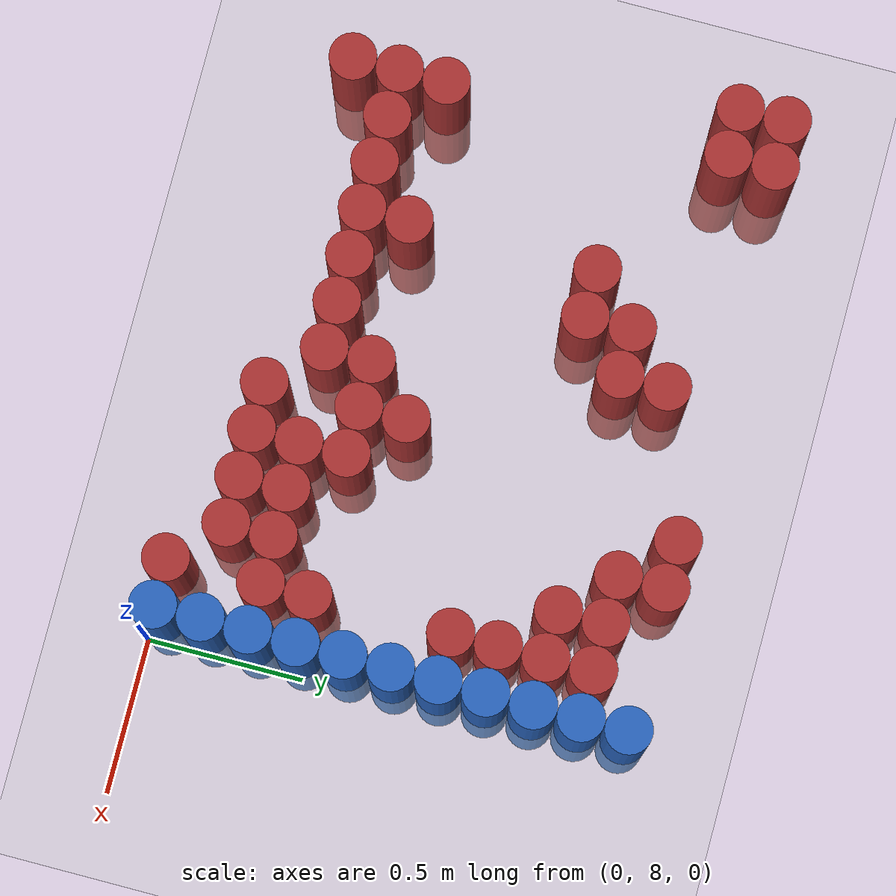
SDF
<sdf version="1.6">
 <world name="default">
  <model name="ground_plane">
   <static>1</static>
   <link name="link">
    <collision name="collision">
     <geometry><plane><normal>0 0 1</normal><size>100 100</size></plane></geometry>
     <surface><friction><ode><mu>100</mu><mu2>50</mu2></ode></friction></surface>
    </collision>
    <visual name="visual">
     <cast_shadows>0</cast_shadows>
     <geometry><plane><normal>0 0 1</normal><size>100 100</size></plane></geometry>
     <material>
      <script><uri>file://media/materials/scripts/gazebo.material</uri><name>Gazebo/Grey</name></script>
     </material>
    </visual>
   </link>
  </model>
  <model name="unit_cylinder_177">
   <static>1</static>
   <pose>-2.025000 9.375000 0.000000 0.000000 0.000000 0.000000</pose>
   <link name="link">
    <inertial>
     <mass>1</mass>
     <inertia><ixx>0.145833</ixx><ixy>0</ixy><ixz>0</ixz><iyy>0.145833</iyy><iyz>0</iyz><izz>0.125</izz></inertia>
    </inertial>
    <collision name="collision">
     <geometry><cylinder><radius>0.075000</radius><length>1</length></cylinder></geometry>
    </collision>
    <visual name="visual">
     <geometry><cylinder><radius>0.075000</radius><length>1</length></cylinder></geometry>
     <material>
      <ambient>0.648000 0.192000 0.192000 1</ambient>
      <diffuse>0.648000 0.192000 0.192000 1</diffuse>
     </material>
     <material>
      <script><name>Gazebo/Grey</name><uri>file://media/materials/scripts/gazebo.material</uri></script>
     </material>
    </visual>
   </link>
  </model>
  <model name="unit_cylinder_178">
   <static>1</static>
   <pose>-2.025000 9.525000 0.000000 0.000000 0.000000 0.000000</pose>
   <link name="link">
    <inertial>
     <mass>1</mass>
     <inertia><ixx>0.145833</ixx><ixy>0</ixy><ixz>0</ixz><iyy>0.145833</iyy><iyz>0</iyz><izz>0.125</izz></inertia>
    </inertial>
    <collision name="collision">
     <geometry><cylinder><radius>0.075000</radius><length>1</length></cylinder></geometry>
    </collision>
    <visual name="visual">
     <geometry><cylinder><radius>0.075000</radius><length>1</length></cylinder></geometry>
     <material>
      <ambient>0.648000 0.192000 0.192000 1</ambient>
      <diffuse>0.648000 0.192000 0.192000 1</diffuse>
     </material>
     <material>
      <script><name>Gazebo/Grey</name><uri>file://media/materials/scripts/gazebo.material</uri></script>
     </material>
    </visual>
   </link>
  </model>
  <model name="unit_cylinder_188">
   <static>1</static>
   <pose>-1.875000 8.175000 0.000000 0.000000 0.000000 0.000000</pose>
   <link name="link">
    <inertial>
     <mass>1</mass>
     <inertia><ixx>0.145833</ixx><ixy>0</ixy><ixz>0</ixz><iyy>0.145833</iyy><iyz>0</iyz><izz>0.125</izz></inertia>
    </inertial>
    <collision name="collision">
     <geometry><cylinder><radius>0.075000</radius><length>1</length></cylinder></geometry>
    </collision>
    <visual name="visual">
     <geometry><cylinder><radius>0.075000</radius><length>1</length></cylinder></geometry>
     <material>
      <ambient>0.648000 0.192000 0.192000 1</ambient>
      <diffuse>0.648000 0.192000 0.192000 1</diffuse>
     </material>
     <material>
      <script><name>Gazebo/Grey</name><uri>file://media/materials/scripts/gazebo.material</uri></script>
     </material>
    </visual>
   </link>
  </model>
  <model name="unit_cylinder_189">
   <static>1</static>
   <pose>-1.875000 8.325000 0.000000 0.000000 0.000000 0.000000</pose>
   <link name="link">
    <inertial>
     <mass>1</mass>
     <inertia><ixx>0.145833</ixx><ixy>0</ixy><ixz>0</ixz><iyy>0.145833</iyy><iyz>0</iyz><izz>0.125</izz></inertia>
    </inertial>
    <collision name="collision">
     <geometry><cylinder><radius>0.075000</radius><length>1</length></cylinder></geometry>
    </collision>
    <visual name="visual">
     <geometry><cylinder><radius>0.075000</radius><length>1</length></cylinder></geometry>
     <material>
      <ambient>0.648000 0.192000 0.192000 1</ambient>
      <diffuse>0.648000 0.192000 0.192000 1</diffuse>
     </material>
     <material>
      <script><name>Gazebo/Grey</name><uri>file://media/materials/scripts/gazebo.material</uri></script>
     </material>
    </visual>
   </link>
  </model>
  <model name="unit_cylinder_190">
   <static>1</static>
   <pose>-1.875000 8.475000 0.000000 0.000000 0.000000 0.000000</pose>
   <link name="link">
    <inertial>
     <mass>1</mass>
     <inertia><ixx>0.145833</ixx><ixy>0</ixy><ixz>0</ixz><iyy>0.145833</iyy><iyz>0</iyz><izz>0.125</izz></inertia>
    </inertial>
    <collision name="collision">
     <geometry><cylinder><radius>0.075000</radius><length>1</length></cylinder></geometry>
    </collision>
    <visual name="visual">
     <geometry><cylinder><radius>0.075000</radius><length>1</length></cylinder></geometry>
     <material>
      <ambient>0.648000 0.192000 0.192000 1</ambient>
      <diffuse>0.648000 0.192000 0.192000 1</diffuse>
     </material>
     <material>
      <script><name>Gazebo/Grey</name><uri>file://media/materials/scripts/gazebo.material</uri></script>
     </material>
    </visual>
   </link>
  </model>
  <model name="unit_cylinder_191">
   <static>1</static>
   <pose>-1.875000 9.375000 0.000000 0.000000 0.000000 0.000000</pose>
   <link name="link">
    <inertial>
     <mass>1</mass>
     <inertia><ixx>0.145833</ixx><ixy>0</ixy><ixz>0</ixz><iyy>0.145833</iyy><iyz>0</iyz><izz>0.125</izz></inertia>
    </inertial>
    <collision name="collision">
     <geometry><cylinder><radius>0.075000</radius><length>1</length></cylinder></geometry>
    </collision>
    <visual name="visual">
     <geometry><cylinder><radius>0.075000</radius><length>1</length></cylinder></geometry>
     <material>
      <ambient>0.648000 0.192000 0.192000 1</ambient>
      <diffuse>0.648000 0.192000 0.192000 1</diffuse>
     </material>
     <material>
      <script><name>Gazebo/Grey</name><uri>file://media/materials/scripts/gazebo.material</uri></script>
     </material>
    </visual>
   </link>
  </model>
  <model name="unit_cylinder_192">
   <static>1</static>
   <pose>-1.875000 9.525000 0.000000 0.000000 0.000000 0.000000</pose>
   <link name="link">
    <inertial>
     <mass>1</mass>
     <inertia><ixx>0.145833</ixx><ixy>0</ixy><ixz>0</ixz><iyy>0.145833</iyy><iyz>0</iyz><izz>0.125</izz></inertia>
    </inertial>
    <collision name="collision">
     <geometry><cylinder><radius>0.075000</radius><length>1</length></cylinder></geometry>
    </collision>
    <visual name="visual">
     <geometry><cylinder><radius>0.075000</radius><length>1</length></cylinder></geometry>
     <material>
      <ambient>0.648000 0.192000 0.192000 1</ambient>
      <diffuse>0.648000 0.192000 0.192000 1</diffuse>
     </material>
     <material>
      <script><name>Gazebo/Grey</name><uri>file://media/materials/scripts/gazebo.material</uri></script>
     </material>
    </visual>
   </link>
  </model>
  <model name="unit_cylinder_203">
   <static>1</static>
   <pose>-1.725000 8.325000 0.000000 0.000000 0.000000 0.000000</pose>
   <link name="link">
    <inertial>
     <mass>1</mass>
     <inertia><ixx>0.145833</ixx><ixy>0</ixy><ixz>0</ixz><iyy>0.145833</iyy><iyz>0</iyz><izz>0.125</izz></inertia>
    </inertial>
    <collision name="collision">
     <geometry><cylinder><radius>0.075000</radius><length>1</length></cylinder></geometry>
    </collision>
    <visual name="visual">
     <geometry><cylinder><radius>0.075000</radius><length>1</length></cylinder></geometry>
     <material>
      <ambient>0.648000 0.192000 0.192000 1</ambient>
      <diffuse>0.648000 0.192000 0.192000 1</diffuse>
     </material>
     <material>
      <script><name>Gazebo/Grey</name><uri>file://media/materials/scripts/gazebo.material</uri></script>
     </material>
    </visual>
   </link>
  </model>
  <model name="unit_cylinder_211">
   <static>1</static>
   <pose>-1.575000 8.325000 0.000000 0.000000 0.000000 0.000000</pose>
   <link name="link">
    <inertial>
     <mass>1</mass>
     <inertia><ixx>0.145833</ixx><ixy>0</ixy><ixz>0</ixz><iyy>0.145833</iyy><iyz>0</iyz><izz>0.125</izz></inertia>
    </inertial>
    <collision name="collision">
     <geometry><cylinder><radius>0.075000</radius><length>1</length></cylinder></geometry>
    </collision>
    <visual name="visual">
     <geometry><cylinder><radius>0.075000</radius><length>1</length></cylinder></geometry>
     <material>
      <ambient>0.648000 0.192000 0.192000 1</ambient>
      <diffuse>0.648000 0.192000 0.192000 1</diffuse>
     </material>
     <material>
      <script><name>Gazebo/Grey</name><uri>file://media/materials/scripts/gazebo.material</uri></script>
     </material>
    </visual>
   </link>
  </model>
  <model name="unit_cylinder_217">
   <static>1</static>
   <pose>-1.425000 8.325000 0.000000 0.000000 0.000000 0.000000</pose>
   <link name="link">
    <inertial>
     <mass>1</mass>
     <inertia><ixx>0.145833</ixx><ixy>0</ixy><ixz>0</ixz><iyy>0.145833</iyy><iyz>0</iyz><izz>0.125</izz></inertia>
    </inertial>
    <collision name="collision">
     <geometry><cylinder><radius>0.075000</radius><length>1</length></cylinder></geometry>
    </collision>
    <visual name="visual">
     <geometry><cylinder><radius>0.075000</radius><length>1</length></cylinder></geometry>
     <material>
      <ambient>0.648000 0.192000 0.192000 1</ambient>
      <diffuse>0.648000 0.192000 0.192000 1</diffuse>
     </material>
     <material>
      <script><name>Gazebo/Grey</name><uri>file://media/materials/scripts/gazebo.material</uri></script>
     </material>
    </visual>
   </link>
  </model>
  <model name="unit_cylinder_218">
   <static>1</static>
   <pose>-1.425000 8.475000 0.000000 0.000000 0.000000 0.000000</pose>
   <link name="link">
    <inertial>
     <mass>1</mass>
     <inertia><ixx>0.145833</ixx><ixy>0</ixy><ixz>0</ixz><iyy>0.145833</iyy><iyz>0</iyz><izz>0.125</izz></inertia>
    </inertial>
    <collision name="collision">
     <geometry><cylinder><radius>0.075000</radius><length>1</length></cylinder></geometry>
    </collision>
    <visual name="visual">
     <geometry><cylinder><radius>0.075000</radius><length>1</length></cylinder></geometry>
     <material>
      <ambient>0.648000 0.192000 0.192000 1</ambient>
      <diffuse>0.648000 0.192000 0.192000 1</diffuse>
     </material>
     <material>
      <script><name>Gazebo/Grey</name><uri>file://media/materials/scripts/gazebo.material</uri></script>
     </material>
    </visual>
   </link>
  </model>
  <model name="unit_cylinder_219">
   <static>1</static>
   <pose>-1.425000 9.075000 0.000000 0.000000 0.000000 0.000000</pose>
   <link name="link">
    <inertial>
     <mass>1</mass>
     <inertia><ixx>0.145833</ixx><ixy>0</ixy><ixz>0</ixz><iyy>0.145833</iyy><iyz>0</iyz><izz>0.125</izz></inertia>
    </inertial>
    <collision name="collision">
     <geometry><cylinder><radius>0.075000</radius><length>1</length></cylinder></geometry>
    </collision>
    <visual name="visual">
     <geometry><cylinder><radius>0.075000</radius><length>1</length></cylinder></geometry>
     <material>
      <ambient>0.648000 0.192000 0.192000 1</ambient>
      <diffuse>0.648000 0.192000 0.192000 1</diffuse>
     </material>
     <material>
      <script><name>Gazebo/Grey</name><uri>file://media/materials/scripts/gazebo.material</uri></script>
     </material>
    </visual>
   </link>
  </model>
  <model name="unit_cylinder_223">
   <static>1</static>
   <pose>-1.275000 8.325000 0.000000 0.000000 0.000000 0.000000</pose>
   <link name="link">
    <inertial>
     <mass>1</mass>
     <inertia><ixx>0.145833</ixx><ixy>0</ixy><ixz>0</ixz><iyy>0.145833</iyy><iyz>0</iyz><izz>0.125</izz></inertia>
    </inertial>
    <collision name="collision">
     <geometry><cylinder><radius>0.075000</radius><length>1</length></cylinder></geometry>
    </collision>
    <visual name="visual">
     <geometry><cylinder><radius>0.075000</radius><length>1</length></cylinder></geometry>
     <material>
      <ambient>0.648000 0.192000 0.192000 1</ambient>
      <diffuse>0.648000 0.192000 0.192000 1</diffuse>
     </material>
     <material>
      <script><name>Gazebo/Grey</name><uri>file://media/materials/scripts/gazebo.material</uri></script>
     </material>
    </visual>
   </link>
  </model>
  <model name="unit_cylinder_224">
   <static>1</static>
   <pose>-1.275000 9.075000 0.000000 0.000000 0.000000 0.000000</pose>
   <link name="link">
    <inertial>
     <mass>1</mass>
     <inertia><ixx>0.145833</ixx><ixy>0</ixy><ixz>0</ixz><iyy>0.145833</iyy><iyz>0</iyz><izz>0.125</izz></inertia>
    </inertial>
    <collision name="collision">
     <geometry><cylinder><radius>0.075000</radius><length>1</length></cylinder></geometry>
    </collision>
    <visual name="visual">
     <geometry><cylinder><radius>0.075000</radius><length>1</length></cylinder></geometry>
     <material>
      <ambient>0.648000 0.192000 0.192000 1</ambient>
      <diffuse>0.648000 0.192000 0.192000 1</diffuse>
     </material>
     <material>
      <script><name>Gazebo/Grey</name><uri>file://media/materials/scripts/gazebo.material</uri></script>
     </material>
    </visual>
   </link>
  </model>
  <model name="unit_cylinder_225">
   <static>1</static>
   <pose>-1.275000 9.225000 0.000000 0.000000 0.000000 0.000000</pose>
   <link name="link">
    <inertial>
     <mass>1</mass>
     <inertia><ixx>0.145833</ixx><ixy>0</ixy><ixz>0</ixz><iyy>0.145833</iyy><iyz>0</iyz><izz>0.125</izz></inertia>
    </inertial>
    <collision name="collision">
     <geometry><cylinder><radius>0.075000</radius><length>1</length></cylinder></geometry>
    </collision>
    <visual name="visual">
     <geometry><cylinder><radius>0.075000</radius><length>1</length></cylinder></geometry>
     <material>
      <ambient>0.648000 0.192000 0.192000 1</ambient>
      <diffuse>0.648000 0.192000 0.192000 1</diffuse>
     </material>
     <material>
      <script><name>Gazebo/Grey</name><uri>file://media/materials/scripts/gazebo.material</uri></script>
     </material>
    </visual>
   </link>
  </model>
  <model name="unit_cylinder_231">
   <static>1</static>
   <pose>-1.125000 8.325000 0.000000 0.000000 0.000000 0.000000</pose>
   <link name="link">
    <inertial>
     <mass>1</mass>
     <inertia><ixx>0.145833</ixx><ixy>0</ixy><ixz>0</ixz><iyy>0.145833</iyy><iyz>0</iyz><izz>0.125</izz></inertia>
    </inertial>
    <collision name="collision">
     <geometry><cylinder><radius>0.075000</radius><length>1</length></cylinder></geometry>
    </collision>
    <visual name="visual">
     <geometry><cylinder><radius>0.075000</radius><length>1</length></cylinder></geometry>
     <material>
      <ambient>0.648000 0.192000 0.192000 1</ambient>
      <diffuse>0.648000 0.192000 0.192000 1</diffuse>
     </material>
     <material>
      <script><name>Gazebo/Grey</name><uri>file://media/materials/scripts/gazebo.material</uri></script>
     </material>
    </visual>
   </link>
  </model>
  <model name="unit_cylinder_232">
   <static>1</static>
   <pose>-1.125000 9.225000 0.000000 0.000000 0.000000 0.000000</pose>
   <link name="link">
    <inertial>
     <mass>1</mass>
     <inertia><ixx>0.145833</ixx><ixy>0</ixy><ixz>0</ixz><iyy>0.145833</iyy><iyz>0</iyz><izz>0.125</izz></inertia>
    </inertial>
    <collision name="collision">
     <geometry><cylinder><radius>0.075000</radius><length>1</length></cylinder></geometry>
    </collision>
    <visual name="visual">
     <geometry><cylinder><radius>0.075000</radius><length>1</length></cylinder></geometry>
     <material>
      <ambient>0.648000 0.192000 0.192000 1</ambient>
      <diffuse>0.648000 0.192000 0.192000 1</diffuse>
     </material>
     <material>
      <script><name>Gazebo/Grey</name><uri>file://media/materials/scripts/gazebo.material</uri></script>
     </material>
    </visual>
   </link>
  </model>
  <model name="unit_cylinder_233">
   <static>1</static>
   <pose>-1.125000 9.375000 0.000000 0.000000 0.000000 0.000000</pose>
   <link name="link">
    <inertial>
     <mass>1</mass>
     <inertia><ixx>0.145833</ixx><ixy>0</ixy><ixz>0</ixz><iyy>0.145833</iyy><iyz>0</iyz><izz>0.125</izz></inertia>
    </inertial>
    <collision name="collision">
     <geometry><cylinder><radius>0.075000</radius><length>1</length></cylinder></geometry>
    </collision>
    <visual name="visual">
     <geometry><cylinder><radius>0.075000</radius><length>1</length></cylinder></geometry>
     <material>
      <ambient>0.648000 0.192000 0.192000 1</ambient>
      <diffuse>0.648000 0.192000 0.192000 1</diffuse>
     </material>
     <material>
      <script><name>Gazebo/Grey</name><uri>file://media/materials/scripts/gazebo.material</uri></script>
     </material>
    </visual>
   </link>
  </model>
  <model name="unit_cylinder_240">
   <static>1</static>
   <pose>-0.975000 8.325000 0.000000 0.000000 0.000000 0.000000</pose>
   <link name="link">
    <inertial>
     <mass>1</mass>
     <inertia><ixx>0.145833</ixx><ixy>0</ixy><ixz>0</ixz><iyy>0.145833</iyy><iyz>0</iyz><izz>0.125</izz></inertia>
    </inertial>
    <collision name="collision">
     <geometry><cylinder><radius>0.075000</radius><length>1</length></cylinder></geometry>
    </collision>
    <visual name="visual">
     <geometry><cylinder><radius>0.075000</radius><length>1</length></cylinder></geometry>
     <material>
      <ambient>0.648000 0.192000 0.192000 1</ambient>
      <diffuse>0.648000 0.192000 0.192000 1</diffuse>
     </material>
     <material>
      <script><name>Gazebo/Grey</name><uri>file://media/materials/scripts/gazebo.material</uri></script>
     </material>
    </visual>
   </link>
  </model>
  <model name="unit_cylinder_241">
   <static>1</static>
   <pose>-0.975000 8.475000 0.000000 0.000000 0.000000 0.000000</pose>
   <link name="link">
    <inertial>
     <mass>1</mass>
     <inertia><ixx>0.145833</ixx><ixy>0</ixy><ixz>0</ixz><iyy>0.145833</iyy><iyz>0</iyz><izz>0.125</izz></inertia>
    </inertial>
    <collision name="collision">
     <geometry><cylinder><radius>0.075000</radius><length>1</length></cylinder></geometry>
    </collision>
    <visual name="visual">
     <geometry><cylinder><radius>0.075000</radius><length>1</length></cylinder></geometry>
     <material>
      <ambient>0.648000 0.192000 0.192000 1</ambient>
      <diffuse>0.648000 0.192000 0.192000 1</diffuse>
     </material>
     <material>
      <script><name>Gazebo/Grey</name><uri>file://media/materials/scripts/gazebo.material</uri></script>
     </material>
    </visual>
   </link>
  </model>
  <model name="unit_cylinder_244">
   <static>1</static>
   <pose>-0.825000 8.175000 0.000000 0.000000 0.000000 0.000000</pose>
   <link name="link">
    <inertial>
     <mass>1</mass>
     <inertia><ixx>0.145833</ixx><ixy>0</ixy><ixz>0</ixz><iyy>0.145833</iyy><iyz>0</iyz><izz>0.125</izz></inertia>
    </inertial>
    <collision name="collision">
     <geometry><cylinder><radius>0.075000</radius><length>1</length></cylinder></geometry>
    </collision>
    <visual name="visual">
     <geometry><cylinder><radius>0.075000</radius><length>1</length></cylinder></geometry>
     <material>
      <ambient>0.648000 0.192000 0.192000 1</ambient>
      <diffuse>0.648000 0.192000 0.192000 1</diffuse>
     </material>
     <material>
      <script><name>Gazebo/Grey</name><uri>file://media/materials/scripts/gazebo.material</uri></script>
     </material>
    </visual>
   </link>
  </model>
  <model name="unit_cylinder_245">
   <static>1</static>
   <pose>-0.825000 8.475000 0.000000 0.000000 0.000000 0.000000</pose>
   <link name="link">
    <inertial>
     <mass>1</mass>
     <inertia><ixx>0.145833</ixx><ixy>0</ixy><ixz>0</ixz><iyy>0.145833</iyy><iyz>0</iyz><izz>0.125</izz></inertia>
    </inertial>
    <collision name="collision">
     <geometry><cylinder><radius>0.075000</radius><length>1</length></cylinder></geometry>
    </collision>
    <visual name="visual">
     <geometry><cylinder><radius>0.075000</radius><length>1</length></cylinder></geometry>
     <material>
      <ambient>0.648000 0.192000 0.192000 1</ambient>
      <diffuse>0.648000 0.192000 0.192000 1</diffuse>
     </material>
     <material>
      <script><name>Gazebo/Grey</name><uri>file://media/materials/scripts/gazebo.material</uri></script>
     </material>
    </visual>
   </link>
  </model>
  <model name="unit_cylinder_246">
   <static>1</static>
   <pose>-0.825000 8.625000 0.000000 0.000000 0.000000 0.000000</pose>
   <link name="link">
    <inertial>
     <mass>1</mass>
     <inertia><ixx>0.145833</ixx><ixy>0</ixy><ixz>0</ixz><iyy>0.145833</iyy><iyz>0</iyz><izz>0.125</izz></inertia>
    </inertial>
    <collision name="collision">
     <geometry><cylinder><radius>0.075000</radius><length>1</length></cylinder></geometry>
    </collision>
    <visual name="visual">
     <geometry><cylinder><radius>0.075000</radius><length>1</length></cylinder></geometry>
     <material>
      <ambient>0.648000 0.192000 0.192000 1</ambient>
      <diffuse>0.648000 0.192000 0.192000 1</diffuse>
     </material>
     <material>
      <script><name>Gazebo/Grey</name><uri>file://media/materials/scripts/gazebo.material</uri></script>
     </material>
    </visual>
   </link>
  </model>
  <model name="unit_cylinder_249">
   <static>1</static>
   <pose>-0.675000 8.175000 0.000000 0.000000 0.000000 0.000000</pose>
   <link name="link">
    <inertial>
     <mass>1</mass>
     <inertia><ixx>0.145833</ixx><ixy>0</ixy><ixz>0</ixz><iyy>0.145833</iyy><iyz>0</iyz><izz>0.125</izz></inertia>
    </inertial>
    <collision name="collision">
     <geometry><cylinder><radius>0.075000</radius><length>1</length></cylinder></geometry>
    </collision>
    <visual name="visual">
     <geometry><cylinder><radius>0.075000</radius><length>1</length></cylinder></geometry>
     <material>
      <ambient>0.648000 0.192000 0.192000 1</ambient>
      <diffuse>0.648000 0.192000 0.192000 1</diffuse>
     </material>
     <material>
      <script><name>Gazebo/Grey</name><uri>file://media/materials/scripts/gazebo.material</uri></script>
     </material>
    </visual>
   </link>
  </model>
  <model name="unit_cylinder_250">
   <static>1</static>
   <pose>-0.675000 8.325000 0.000000 0.000000 0.000000 0.000000</pose>
   <link name="link">
    <inertial>
     <mass>1</mass>
     <inertia><ixx>0.145833</ixx><ixy>0</ixy><ixz>0</ixz><iyy>0.145833</iyy><iyz>0</iyz><izz>0.125</izz></inertia>
    </inertial>
    <collision name="collision">
     <geometry><cylinder><radius>0.075000</radius><length>1</length></cylinder></geometry>
    </collision>
    <visual name="visual">
     <geometry><cylinder><radius>0.075000</radius><length>1</length></cylinder></geometry>
     <material>
      <ambient>0.648000 0.192000 0.192000 1</ambient>
      <diffuse>0.648000 0.192000 0.192000 1</diffuse>
     </material>
     <material>
      <script><name>Gazebo/Grey</name><uri>file://media/materials/scripts/gazebo.material</uri></script>
     </material>
    </visual>
   </link>
  </model>
  <model name="unit_cylinder_251">
   <static>1</static>
   <pose>-0.675000 8.475000 0.000000 0.000000 0.000000 0.000000</pose>
   <link name="link">
    <inertial>
     <mass>1</mass>
     <inertia><ixx>0.145833</ixx><ixy>0</ixy><ixz>0</ixz><iyy>0.145833</iyy><iyz>0</iyz><izz>0.125</izz></inertia>
    </inertial>
    <collision name="collision">
     <geometry><cylinder><radius>0.075000</radius><length>1</length></cylinder></geometry>
    </collision>
    <visual name="visual">
     <geometry><cylinder><radius>0.075000</radius><length>1</length></cylinder></geometry>
     <material>
      <ambient>0.648000 0.192000 0.192000 1</ambient>
      <diffuse>0.648000 0.192000 0.192000 1</diffuse>
     </material>
     <material>
      <script><name>Gazebo/Grey</name><uri>file://media/materials/scripts/gazebo.material</uri></script>
     </material>
    </visual>
   </link>
  </model>
  <model name="unit_cylinder_252">
   <static>1</static>
   <pose>-0.675000 9.525000 0.000000 0.000000 0.000000 0.000000</pose>
   <link name="link">
    <inertial>
     <mass>1</mass>
     <inertia><ixx>0.145833</ixx><ixy>0</ixy><ixz>0</ixz><iyy>0.145833</iyy><iyz>0</iyz><izz>0.125</izz></inertia>
    </inertial>
    <collision name="collision">
     <geometry><cylinder><radius>0.075000</radius><length>1</length></cylinder></geometry>
    </collision>
    <visual name="visual">
     <geometry><cylinder><radius>0.075000</radius><length>1</length></cylinder></geometry>
     <material>
      <ambient>0.648000 0.192000 0.192000 1</ambient>
      <diffuse>0.648000 0.192000 0.192000 1</diffuse>
     </material>
     <material>
      <script><name>Gazebo/Grey</name><uri>file://media/materials/scripts/gazebo.material</uri></script>
     </material>
    </visual>
   </link>
  </model>
  <model name="unit_cylinder_257">
   <static>1</static>
   <pose>-0.525000 8.175000 0.000000 0.000000 0.000000 0.000000</pose>
   <link name="link">
    <inertial>
     <mass>1</mass>
     <inertia><ixx>0.145833</ixx><ixy>0</ixy><ixz>0</ixz><iyy>0.145833</iyy><iyz>0</iyz><izz>0.125</izz></inertia>
    </inertial>
    <collision name="collision">
     <geometry><cylinder><radius>0.075000</radius><length>1</length></cylinder></geometry>
    </collision>
    <visual name="visual">
     <geometry><cylinder><radius>0.075000</radius><length>1</length></cylinder></geometry>
     <material>
      <ambient>0.648000 0.192000 0.192000 1</ambient>
      <diffuse>0.648000 0.192000 0.192000 1</diffuse>
     </material>
     <material>
      <script><name>Gazebo/Grey</name><uri>file://media/materials/scripts/gazebo.material</uri></script>
     </material>
    </visual>
   </link>
  </model>
  <model name="unit_cylinder_258">
   <static>1</static>
   <pose>-0.525000 8.325000 0.000000 0.000000 0.000000 0.000000</pose>
   <link name="link">
    <inertial>
     <mass>1</mass>
     <inertia><ixx>0.145833</ixx><ixy>0</ixy><ixz>0</ixz><iyy>0.145833</iyy><iyz>0</iyz><izz>0.125</izz></inertia>
    </inertial>
    <collision name="collision">
     <geometry><cylinder><radius>0.075000</radius><length>1</length></cylinder></geometry>
    </collision>
    <visual name="visual">
     <geometry><cylinder><radius>0.075000</radius><length>1</length></cylinder></geometry>
     <material>
      <ambient>0.648000 0.192000 0.192000 1</ambient>
      <diffuse>0.648000 0.192000 0.192000 1</diffuse>
     </material>
     <material>
      <script><name>Gazebo/Grey</name><uri>file://media/materials/scripts/gazebo.material</uri></script>
     </material>
    </visual>
   </link>
  </model>
  <model name="unit_cylinder_259">
   <static>1</static>
   <pose>-0.525000 9.375000 0.000000 0.000000 0.000000 0.000000</pose>
   <link name="link">
    <inertial>
     <mass>1</mass>
     <inertia><ixx>0.145833</ixx><ixy>0</ixy><ixz>0</ixz><iyy>0.145833</iyy><iyz>0</iyz><izz>0.125</izz></inertia>
    </inertial>
    <collision name="collision">
     <geometry><cylinder><radius>0.075000</radius><length>1</length></cylinder></geometry>
    </collision>
    <visual name="visual">
     <geometry><cylinder><radius>0.075000</radius><length>1</length></cylinder></geometry>
     <material>
      <ambient>0.648000 0.192000 0.192000 1</ambient>
      <diffuse>0.648000 0.192000 0.192000 1</diffuse>
     </material>
     <material>
      <script><name>Gazebo/Grey</name><uri>file://media/materials/scripts/gazebo.material</uri></script>
     </material>
    </visual>
   </link>
  </model>
  <model name="unit_cylinder_260">
   <static>1</static>
   <pose>-0.525000 9.525000 0.000000 0.000000 0.000000 0.000000</pose>
   <link name="link">
    <inertial>
     <mass>1</mass>
     <inertia><ixx>0.145833</ixx><ixy>0</ixy><ixz>0</ixz><iyy>0.145833</iyy><iyz>0</iyz><izz>0.125</izz></inertia>
    </inertial>
    <collision name="collision">
     <geometry><cylinder><radius>0.075000</radius><length>1</length></cylinder></geometry>
    </collision>
    <visual name="visual">
     <geometry><cylinder><radius>0.075000</radius><length>1</length></cylinder></geometry>
     <material>
      <ambient>0.648000 0.192000 0.192000 1</ambient>
      <diffuse>0.648000 0.192000 0.192000 1</diffuse>
     </material>
     <material>
      <script><name>Gazebo/Grey</name><uri>file://media/materials/scripts/gazebo.material</uri></script>
     </material>
    </visual>
   </link>
  </model>
  <model name="unit_cylinder_268">
   <static>1</static>
   <pose>-0.375000 8.175000 0.000000 0.000000 0.000000 0.000000</pose>
   <link name="link">
    <inertial>
     <mass>1</mass>
     <inertia><ixx>0.145833</ixx><ixy>0</ixy><ixz>0</ixz><iyy>0.145833</iyy><iyz>0</iyz><izz>0.125</izz></inertia>
    </inertial>
    <collision name="collision">
     <geometry><cylinder><radius>0.075000</radius><length>1</length></cylinder></geometry>
    </collision>
    <visual name="visual">
     <geometry><cylinder><radius>0.075000</radius><length>1</length></cylinder></geometry>
     <material>
      <ambient>0.648000 0.192000 0.192000 1</ambient>
      <diffuse>0.648000 0.192000 0.192000 1</diffuse>
     </material>
     <material>
      <script><name>Gazebo/Grey</name><uri>file://media/materials/scripts/gazebo.material</uri></script>
     </material>
    </visual>
   </link>
  </model>
  <model name="unit_cylinder_269">
   <static>1</static>
   <pose>-0.375000 8.325000 0.000000 0.000000 0.000000 0.000000</pose>
   <link name="link">
    <inertial>
     <mass>1</mass>
     <inertia><ixx>0.145833</ixx><ixy>0</ixy><ixz>0</ixz><iyy>0.145833</iyy><iyz>0</iyz><izz>0.125</izz></inertia>
    </inertial>
    <collision name="collision">
     <geometry><cylinder><radius>0.075000</radius><length>1</length></cylinder></geometry>
    </collision>
    <visual name="visual">
     <geometry><cylinder><radius>0.075000</radius><length>1</length></cylinder></geometry>
     <material>
      <ambient>0.648000 0.192000 0.192000 1</ambient>
      <diffuse>0.648000 0.192000 0.192000 1</diffuse>
     </material>
     <material>
      <script><name>Gazebo/Grey</name><uri>file://media/materials/scripts/gazebo.material</uri></script>
     </material>
    </visual>
   </link>
  </model>
  <model name="unit_cylinder_270">
   <static>1</static>
   <pose>-0.375000 9.225000 0.000000 0.000000 0.000000 0.000000</pose>
   <link name="link">
    <inertial>
     <mass>1</mass>
     <inertia><ixx>0.145833</ixx><ixy>0</ixy><ixz>0</ixz><iyy>0.145833</iyy><iyz>0</iyz><izz>0.125</izz></inertia>
    </inertial>
    <collision name="collision">
     <geometry><cylinder><radius>0.075000</radius><length>1</length></cylinder></geometry>
    </collision>
    <visual name="visual">
     <geometry><cylinder><radius>0.075000</radius><length>1</length></cylinder></geometry>
     <material>
      <ambient>0.648000 0.192000 0.192000 1</ambient>
      <diffuse>0.648000 0.192000 0.192000 1</diffuse>
     </material>
     <material>
      <script><name>Gazebo/Grey</name><uri>file://media/materials/scripts/gazebo.material</uri></script>
     </material>
    </visual>
   </link>
  </model>
  <model name="unit_cylinder_271">
   <static>1</static>
   <pose>-0.375000 9.375000 0.000000 0.000000 0.000000 0.000000</pose>
   <link name="link">
    <inertial>
     <mass>1</mass>
     <inertia><ixx>0.145833</ixx><ixy>0</ixy><ixz>0</ixz><iyy>0.145833</iyy><iyz>0</iyz><izz>0.125</izz></inertia>
    </inertial>
    <collision name="collision">
     <geometry><cylinder><radius>0.075000</radius><length>1</length></cylinder></geometry>
    </collision>
    <visual name="visual">
     <geometry><cylinder><radius>0.075000</radius><length>1</length></cylinder></geometry>
     <material>
      <ambient>0.648000 0.192000 0.192000 1</ambient>
      <diffuse>0.648000 0.192000 0.192000 1</diffuse>
     </material>
     <material>
      <script><name>Gazebo/Grey</name><uri>file://media/materials/scripts/gazebo.material</uri></script>
     </material>
    </visual>
   </link>
  </model>
  <model name="unit_cylinder_281">
   <static>1</static>
   <pose>-0.225000 8.025000 0.000000 0.000000 0.000000 0.000000</pose>
   <link name="link">
    <inertial>
     <mass>1</mass>
     <inertia><ixx>0.145833</ixx><ixy>0</ixy><ixz>0</ixz><iyy>0.145833</iyy><iyz>0</iyz><izz>0.125</izz></inertia>
    </inertial>
    <collision name="collision">
     <geometry><cylinder><radius>0.075000</radius><length>1</length></cylinder></geometry>
    </collision>
    <visual name="visual">
     <geometry><cylinder><radius>0.075000</radius><length>1</length></cylinder></geometry>
     <material>
      <ambient>0.648000 0.192000 0.192000 1</ambient>
      <diffuse>0.648000 0.192000 0.192000 1</diffuse>
     </material>
     <material>
      <script><name>Gazebo/Grey</name><uri>file://media/materials/scripts/gazebo.material</uri></script>
     </material>
    </visual>
   </link>
  </model>
  <model name="unit_cylinder_282">
   <static>1</static>
   <pose>-0.225000 8.325000 0.000000 0.000000 0.000000 0.000000</pose>
   <link name="link">
    <inertial>
     <mass>1</mass>
     <inertia><ixx>0.145833</ixx><ixy>0</ixy><ixz>0</ixz><iyy>0.145833</iyy><iyz>0</iyz><izz>0.125</izz></inertia>
    </inertial>
    <collision name="collision">
     <geometry><cylinder><radius>0.075000</radius><length>1</length></cylinder></geometry>
    </collision>
    <visual name="visual">
     <geometry><cylinder><radius>0.075000</radius><length>1</length></cylinder></geometry>
     <material>
      <ambient>0.648000 0.192000 0.192000 1</ambient>
      <diffuse>0.648000 0.192000 0.192000 1</diffuse>
     </material>
     <material>
      <script><name>Gazebo/Grey</name><uri>file://media/materials/scripts/gazebo.material</uri></script>
     </material>
    </visual>
   </link>
  </model>
  <model name="unit_cylinder_283">
   <static>1</static>
   <pose>-0.225000 8.475000 0.000000 0.000000 0.000000 0.000000</pose>
   <link name="link">
    <inertial>
     <mass>1</mass>
     <inertia><ixx>0.145833</ixx><ixy>0</ixy><ixz>0</ixz><iyy>0.145833</iyy><iyz>0</iyz><izz>0.125</izz></inertia>
    </inertial>
    <collision name="collision">
     <geometry><cylinder><radius>0.075000</radius><length>1</length></cylinder></geometry>
    </collision>
    <visual name="visual">
     <geometry><cylinder><radius>0.075000</radius><length>1</length></cylinder></geometry>
     <material>
      <ambient>0.648000 0.192000 0.192000 1</ambient>
      <diffuse>0.648000 0.192000 0.192000 1</diffuse>
     </material>
     <material>
      <script><name>Gazebo/Grey</name><uri>file://media/materials/scripts/gazebo.material</uri></script>
     </material>
    </visual>
   </link>
  </model>
  <model name="unit_cylinder_284">
   <static>1</static>
   <pose>-0.225000 8.925000 0.000000 0.000000 0.000000 0.000000</pose>
   <link name="link">
    <inertial>
     <mass>1</mass>
     <inertia><ixx>0.145833</ixx><ixy>0</ixy><ixz>0</ixz><iyy>0.145833</iyy><iyz>0</iyz><izz>0.125</izz></inertia>
    </inertial>
    <collision name="collision">
     <geometry><cylinder><radius>0.075000</radius><length>1</length></cylinder></geometry>
    </collision>
    <visual name="visual">
     <geometry><cylinder><radius>0.075000</radius><length>1</length></cylinder></geometry>
     <material>
      <ambient>0.648000 0.192000 0.192000 1</ambient>
      <diffuse>0.648000 0.192000 0.192000 1</diffuse>
     </material>
     <material>
      <script><name>Gazebo/Grey</name><uri>file://media/materials/scripts/gazebo.material</uri></script>
     </material>
    </visual>
   </link>
  </model>
  <model name="unit_cylinder_285">
   <static>1</static>
   <pose>-0.225000 9.075000 0.000000 0.000000 0.000000 0.000000</pose>
   <link name="link">
    <inertial>
     <mass>1</mass>
     <inertia><ixx>0.145833</ixx><ixy>0</ixy><ixz>0</ixz><iyy>0.145833</iyy><iyz>0</iyz><izz>0.125</izz></inertia>
    </inertial>
    <collision name="collision">
     <geometry><cylinder><radius>0.075000</radius><length>1</length></cylinder></geometry>
    </collision>
    <visual name="visual">
     <geometry><cylinder><radius>0.075000</radius><length>1</length></cylinder></geometry>
     <material>
      <ambient>0.648000 0.192000 0.192000 1</ambient>
      <diffuse>0.648000 0.192000 0.192000 1</diffuse>
     </material>
     <material>
      <script><name>Gazebo/Grey</name><uri>file://media/materials/scripts/gazebo.material</uri></script>
     </material>
    </visual>
   </link>
  </model>
  <model name="unit_cylinder_286">
   <static>1</static>
   <pose>-0.225000 9.225000 0.000000 0.000000 0.000000 0.000000</pose>
   <link name="link">
    <inertial>
     <mass>1</mass>
     <inertia><ixx>0.145833</ixx><ixy>0</ixy><ixz>0</ixz><iyy>0.145833</iyy><iyz>0</iyz><izz>0.125</izz></inertia>
    </inertial>
    <collision name="collision">
     <geometry><cylinder><radius>0.075000</radius><length>1</length></cylinder></geometry>
    </collision>
    <visual name="visual">
     <geometry><cylinder><radius>0.075000</radius><length>1</length></cylinder></geometry>
     <material>
      <ambient>0.648000 0.192000 0.192000 1</ambient>
      <diffuse>0.648000 0.192000 0.192000 1</diffuse>
     </material>
     <material>
      <script><name>Gazebo/Grey</name><uri>file://media/materials/scripts/gazebo.material</uri></script>
     </material>
    </visual>
   </link>
  </model>
  <model name="unit_cylinder_287">
   <static>1</static>
   <pose>-0.225000 9.375000 0.000000 0.000000 0.000000 0.000000</pose>
   <link name="link">
    <inertial>
     <mass>1</mass>
     <inertia><ixx>0.145833</ixx><ixy>0</ixy><ixz>0</ixz><iyy>0.145833</iyy><iyz>0</iyz><izz>0.125</izz></inertia>
    </inertial>
    <collision name="collision">
     <geometry><cylinder><radius>0.075000</radius><length>1</length></cylinder></geometry>
    </collision>
    <visual name="visual">
     <geometry><cylinder><radius>0.075000</radius><length>1</length></cylinder></geometry>
     <material>
      <ambient>0.648000 0.192000 0.192000 1</ambient>
      <diffuse>0.648000 0.192000 0.192000 1</diffuse>
     </material>
     <material>
      <script><name>Gazebo/Grey</name><uri>file://media/materials/scripts/gazebo.material</uri></script>
     </material>
    </visual>
   </link>
  </model>
  <model name="unit_cylinder_307">
   <static>1</static>
   <pose>-0.075000 8.025000 0.000000 0.000000 0.000000 0.000000</pose>
   <link name="link">
    <inertial>
     <mass>1</mass>
     <inertia><ixx>0.145833</ixx><ixy>0</ixy><ixz>0</ixz><iyy>0.145833</iyy><iyz>0</iyz><izz>0.125</izz></inertia>
    </inertial>
    <collision name="collision">
     <geometry><cylinder><radius>0.075000</radius><length>1</length></cylinder></geometry>
    </collision>
    <visual name="visual">
     <geometry><cylinder><radius>0.075000</radius><length>1</length></cylinder></geometry>
     <material>
      <ambient>0.152000 0.379000 0.720000 1</ambient>
      <diffuse>0.152000 0.379000 0.720000 1</diffuse>
     </material>
     <material>
      <script><name>Gazebo/Grey</name><uri>file://media/materials/scripts/gazebo.material</uri></script>
     </material>
    </visual>
   </link>
  </model>
  <model name="unit_cylinder_308">
   <static>1</static>
   <pose>-0.075000 8.175000 0.000000 0.000000 0.000000 0.000000</pose>
   <link name="link">
    <inertial>
     <mass>1</mass>
     <inertia><ixx>0.145833</ixx><ixy>0</ixy><ixz>0</ixz><iyy>0.145833</iyy><iyz>0</iyz><izz>0.125</izz></inertia>
    </inertial>
    <collision name="collision">
     <geometry><cylinder><radius>0.075000</radius><length>1</length></cylinder></geometry>
    </collision>
    <visual name="visual">
     <geometry><cylinder><radius>0.075000</radius><length>1</length></cylinder></geometry>
     <material>
      <ambient>0.152000 0.379000 0.720000 1</ambient>
      <diffuse>0.152000 0.379000 0.720000 1</diffuse>
     </material>
     <material>
      <script><name>Gazebo/Grey</name><uri>file://media/materials/scripts/gazebo.material</uri></script>
     </material>
    </visual>
   </link>
  </model>
  <model name="unit_cylinder_309">
   <static>1</static>
   <pose>-0.075000 8.325000 0.000000 0.000000 0.000000 0.000000</pose>
   <link name="link">
    <inertial>
     <mass>1</mass>
     <inertia><ixx>0.145833</ixx><ixy>0</ixy><ixz>0</ixz><iyy>0.145833</iyy><iyz>0</iyz><izz>0.125</izz></inertia>
    </inertial>
    <collision name="collision">
     <geometry><cylinder><radius>0.075000</radius><length>1</length></cylinder></geometry>
    </collision>
    <visual name="visual">
     <geometry><cylinder><radius>0.075000</radius><length>1</length></cylinder></geometry>
     <material>
      <ambient>0.152000 0.379000 0.720000 1</ambient>
      <diffuse>0.152000 0.379000 0.720000 1</diffuse>
     </material>
     <material>
      <script><name>Gazebo/Grey</name><uri>file://media/materials/scripts/gazebo.material</uri></script>
     </material>
    </visual>
   </link>
  </model>
  <model name="unit_cylinder_310">
   <static>1</static>
   <pose>-0.075000 8.475000 0.000000 0.000000 0.000000 0.000000</pose>
   <link name="link">
    <inertial>
     <mass>1</mass>
     <inertia><ixx>0.145833</ixx><ixy>0</ixy><ixz>0</ixz><iyy>0.145833</iyy><iyz>0</iyz><izz>0.125</izz></inertia>
    </inertial>
    <collision name="collision">
     <geometry><cylinder><radius>0.075000</radius><length>1</length></cylinder></geometry>
    </collision>
    <visual name="visual">
     <geometry><cylinder><radius>0.075000</radius><length>1</length></cylinder></geometry>
     <material>
      <ambient>0.152000 0.379000 0.720000 1</ambient>
      <diffuse>0.152000 0.379000 0.720000 1</diffuse>
     </material>
     <material>
      <script><name>Gazebo/Grey</name><uri>file://media/materials/scripts/gazebo.material</uri></script>
     </material>
    </visual>
   </link>
  </model>
  <model name="unit_cylinder_311">
   <static>1</static>
   <pose>-0.075000 8.625000 0.000000 0.000000 0.000000 0.000000</pose>
   <link name="link">
    <inertial>
     <mass>1</mass>
     <inertia><ixx>0.145833</ixx><ixy>0</ixy><ixz>0</ixz><iyy>0.145833</iyy><iyz>0</iyz><izz>0.125</izz></inertia>
    </inertial>
    <collision name="collision">
     <geometry><cylinder><radius>0.075000</radius><length>1</length></cylinder></geometry>
    </collision>
    <visual name="visual">
     <geometry><cylinder><radius>0.075000</radius><length>1</length></cylinder></geometry>
     <material>
      <ambient>0.152000 0.379000 0.720000 1</ambient>
      <diffuse>0.152000 0.379000 0.720000 1</diffuse>
     </material>
     <material>
      <script><name>Gazebo/Grey</name><uri>file://media/materials/scripts/gazebo.material</uri></script>
     </material>
    </visual>
   </link>
  </model>
  <model name="unit_cylinder_312">
   <static>1</static>
   <pose>-0.075000 8.775000 0.000000 0.000000 0.000000 0.000000</pose>
   <link name="link">
    <inertial>
     <mass>1</mass>
     <inertia><ixx>0.145833</ixx><ixy>0</ixy><ixz>0</ixz><iyy>0.145833</iyy><iyz>0</iyz><izz>0.125</izz></inertia>
    </inertial>
    <collision name="collision">
     <geometry><cylinder><radius>0.075000</radius><length>1</length></cylinder></geometry>
    </collision>
    <visual name="visual">
     <geometry><cylinder><radius>0.075000</radius><length>1</length></cylinder></geometry>
     <material>
      <ambient>0.152000 0.379000 0.720000 1</ambient>
      <diffuse>0.152000 0.379000 0.720000 1</diffuse>
     </material>
     <material>
      <script><name>Gazebo/Grey</name><uri>file://media/materials/scripts/gazebo.material</uri></script>
     </material>
    </visual>
   </link>
  </model>
  <model name="unit_cylinder_313">
   <static>1</static>
   <pose>-0.075000 8.925000 0.000000 0.000000 0.000000 0.000000</pose>
   <link name="link">
    <inertial>
     <mass>1</mass>
     <inertia><ixx>0.145833</ixx><ixy>0</ixy><ixz>0</ixz><iyy>0.145833</iyy><iyz>0</iyz><izz>0.125</izz></inertia>
    </inertial>
    <collision name="collision">
     <geometry><cylinder><radius>0.075000</radius><length>1</length></cylinder></geometry>
    </collision>
    <visual name="visual">
     <geometry><cylinder><radius>0.075000</radius><length>1</length></cylinder></geometry>
     <material>
      <ambient>0.152000 0.379000 0.720000 1</ambient>
      <diffuse>0.152000 0.379000 0.720000 1</diffuse>
     </material>
     <material>
      <script><name>Gazebo/Grey</name><uri>file://media/materials/scripts/gazebo.material</uri></script>
     </material>
    </visual>
   </link>
  </model>
  <model name="unit_cylinder_314">
   <static>1</static>
   <pose>-0.075000 9.075000 0.000000 0.000000 0.000000 0.000000</pose>
   <link name="link">
    <inertial>
     <mass>1</mass>
     <inertia><ixx>0.145833</ixx><ixy>0</ixy><ixz>0</ixz><iyy>0.145833</iyy><iyz>0</iyz><izz>0.125</izz></inertia>
    </inertial>
    <collision name="collision">
     <geometry><cylinder><radius>0.075000</radius><length>1</length></cylinder></geometry>
    </collision>
    <visual name="visual">
     <geometry><cylinder><radius>0.075000</radius><length>1</length></cylinder></geometry>
     <material>
      <ambient>0.152000 0.379000 0.720000 1</ambient>
      <diffuse>0.152000 0.379000 0.720000 1</diffuse>
     </material>
     <material>
      <script><name>Gazebo/Grey</name><uri>file://media/materials/scripts/gazebo.material</uri></script>
     </material>
    </visual>
   </link>
  </model>
  <model name="unit_cylinder_315">
   <static>1</static>
   <pose>-0.075000 9.225000 0.000000 0.000000 0.000000 0.000000</pose>
   <link name="link">
    <inertial>
     <mass>1</mass>
     <inertia><ixx>0.145833</ixx><ixy>0</ixy><ixz>0</ixz><iyy>0.145833</iyy><iyz>0</iyz><izz>0.125</izz></inertia>
    </inertial>
    <collision name="collision">
     <geometry><cylinder><radius>0.075000</radius><length>1</length></cylinder></geometry>
    </collision>
    <visual name="visual">
     <geometry><cylinder><radius>0.075000</radius><length>1</length></cylinder></geometry>
     <material>
      <ambient>0.152000 0.379000 0.720000 1</ambient>
      <diffuse>0.152000 0.379000 0.720000 1</diffuse>
     </material>
     <material>
      <script><name>Gazebo/Grey</name><uri>file://media/materials/scripts/gazebo.material</uri></script>
     </material>
    </visual>
   </link>
  </model>
  <model name="unit_cylinder_316">
   <static>1</static>
   <pose>-0.075000 9.375000 0.000000 0.000000 0.000000 0.000000</pose>
   <link name="link">
    <inertial>
     <mass>1</mass>
     <inertia><ixx>0.145833</ixx><ixy>0</ixy><ixz>0</ixz><iyy>0.145833</iyy><iyz>0</iyz><izz>0.125</izz></inertia>
    </inertial>
    <collision name="collision">
     <geometry><cylinder><radius>0.075000</radius><length>1</length></cylinder></geometry>
    </collision>
    <visual name="visual">
     <geometry><cylinder><radius>0.075000</radius><length>1</length></cylinder></geometry>
     <material>
      <ambient>0.152000 0.379000 0.720000 1</ambient>
      <diffuse>0.152000 0.379000 0.720000 1</diffuse>
     </material>
     <material>
      <script><name>Gazebo/Grey</name><uri>file://media/materials/scripts/gazebo.material</uri></script>
     </material>
    </visual>
   </link>
  </model>
  <model name="unit_cylinder_317">
   <static>1</static>
   <pose>-0.075000 9.525000 0.000000 0.000000 0.000000 0.000000</pose>
   <link name="link">
    <inertial>
     <mass>1</mass>
     <inertia><ixx>0.145833</ixx><ixy>0</ixy><ixz>0</ixz><iyy>0.145833</iyy><iyz>0</iyz><izz>0.125</izz></inertia>
    </inertial>
    <collision name="collision">
     <geometry><cylinder><radius>0.075000</radius><length>1</length></cylinder></geometry>
    </collision>
    <visual name="visual">
     <geometry><cylinder><radius>0.075000</radius><length>1</length></cylinder></geometry>
     <material>
      <ambient>0.152000 0.379000 0.720000 1</ambient>
      <diffuse>0.152000 0.379000 0.720000 1</diffuse>
     </material>
     <material>
      <script><name>Gazebo/Grey</name><uri>file://media/materials/scripts/gazebo.material</uri></script>
     </material>
    </visual>
   </link>
  </model>
 </world>
</sdf>
